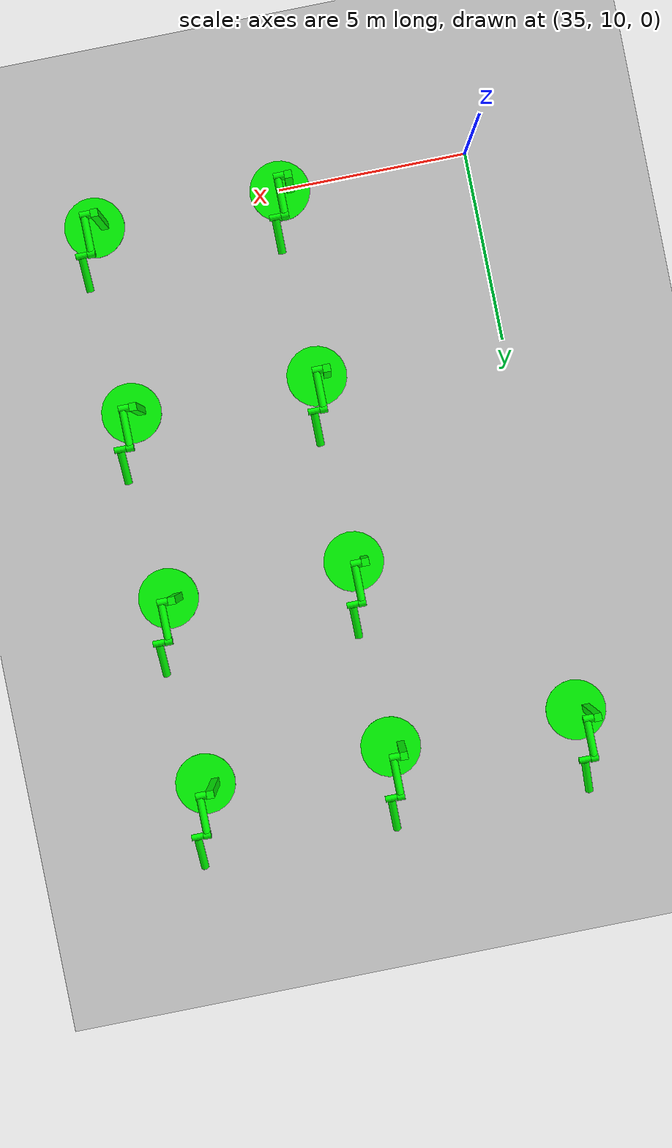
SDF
<sdf version="1.6">
 <world name="double_pendulums">
  <model name="ground_plane">
   <static>true</static>
   <link name="link">
    <collision name="collision">
     <geometry><plane><normal>0 0 1</normal><size>100 100</size></plane></geometry>
    </collision>
    <visual name="visual">
     <geometry><plane><normal>0 0 1</normal><size>100 100</size></plane></geometry>
     <material>
      <ambient>0.8 0.8 0.8 1</ambient>
      <diffuse>0.8 0.8 0.8 1</diffuse>
      <specular>0.8 0.8 0.8 1</specular>
     </material>
    </visual>
   </link>
  </model>
  <model name="dbl_pendulum_68">
   <pose>40 10 0 0 0 0</pose>
   <link name="base">
    <inertial><mass>100</mass></inertial>
    <visual name="vis_plate_on_ground">
     <pose>0 0 0.01 0 0 0</pose>
     <geometry><cylinder><radius>0.8</radius><length>0.02</length></cylinder></geometry>
     <material><ambient>0 1 0 1</ambient><diffuse>0 1 0 1</diffuse><specular>0 1 0 1</specular></material>
    </visual>
    <visual name="vis_pole">
     <pose>-0.275 0 1.1 0 0 0</pose>
     <geometry><box><size>0.2 0.2 2.2</size></box></geometry>
     <material><ambient>0 1 0 1</ambient><diffuse>0 1 0 1</diffuse><specular>0 1 0 1</specular></material>
    </visual>
    <collision name="col_plate_on_ground">
     <pose>0 0 0.01 0 0 0</pose>
     <geometry><cylinder><radius>0.8</radius><length>0.02</length></cylinder></geometry>
    </collision>
    <collision name="col_pole">
     <pose>-0.275 0 1.1 0 0 0</pose>
     <geometry><box><size>0.2 0.2 2.2</size></box></geometry>
    </collision>
   </link>
   <link name="upper_link">
    <pose>0 0 2.1 -1.5708 0 0</pose>
    <inertial><pose>0 0 0.5 0 0 0</pose></inertial>
    <visual name="vis_upper_joint">
     <pose>-0.05 0 0 0 1.5708 0</pose>
     <geometry><cylinder><radius>0.1</radius><length>0.3</length></cylinder></geometry>
     <material><ambient>0 1 0 1</ambient><diffuse>0 1 0 1</diffuse><specular>0 1 0 1</specular></material>
    </visual>
    <visual name="vis_lower_joint">
     <pose>0 0 1.0 0 1.5708 0</pose>
     <geometry><cylinder><radius>0.1</radius><length>0.2</length></cylinder></geometry>
     <material><ambient>0 1 0 1</ambient><diffuse>0 1 0 1</diffuse><specular>0 1 0 1</specular></material>
    </visual>
    <visual name="vis_cylinder">
     <pose>0 0 0.5 0 0 0</pose>
     <geometry><cylinder><radius>0.1</radius><length>0.9</length></cylinder></geometry>
     <material><ambient>0 1 0 1</ambient><diffuse>0 1 0 1</diffuse><specular>0 1 0 1</specular></material>
    </visual>
    <collision name="col_upper_joint">
     <pose>-0.05 0 0 0 1.5708 0</pose>
     <geometry><cylinder><radius>0.1</radius><length>0.3</length></cylinder></geometry>
    </collision>
    <collision name="col_lower_joint">
     <pose>0 0 1.0 0 1.5708 0</pose>
     <geometry><cylinder><radius>0.1</radius><length>0.2</length></cylinder></geometry>
    </collision>
    <collision name="col_cylinder">
     <pose>0 0 0.5 0 0 0</pose>
     <geometry><cylinder><radius>0.1</radius><length>0.9</length></cylinder></geometry>
    </collision>
   </link>
   <link name="lower_link">
    <pose>0.25 1.0 2.1 -2 0 0</pose>
    <inertial><pose>0 0 0.5 0 0 0</pose></inertial>
    <visual name="vis_lower_joint">
     <pose>0 0 0 0 1.5708 0</pose>
     <geometry><cylinder><radius>0.08</radius><length>0.3</length></cylinder></geometry>
     <material><ambient>0 1 0 1</ambient><diffuse>0 1 0 1</diffuse><specular>0 1 0 1</specular></material>
    </visual>
    <visual name="vis_cylinder">
     <pose>0 0 0.5 0 0 0</pose>
     <geometry><cylinder><radius>0.1</radius><length>0.9</length></cylinder></geometry>
     <material><ambient>0 1 0 1</ambient><diffuse>0 1 0 1</diffuse><specular>0 1 0 1</specular></material>
    </visual>
    <collision name="col_lower_joint">
     <pose>0 0 0 0 1.5708 0</pose>
     <geometry><cylinder><radius>0.08</radius><length>0.3</length></cylinder></geometry>
    </collision>
    <collision name="col_cylinder">
     <pose>0 0 0.5 0 0 0</pose>
     <geometry><cylinder><radius>0.1</radius><length>0.9</length></cylinder></geometry>
    </collision>
   </link>
   <joint name="upper_joint" type="revolute">
    <parent>base</parent>
    <child>upper_link</child>
    <axis><xyz>1.0 0 0</xyz></axis>
   </joint>
   <joint name="lower_joint" type="revolute">
    <parent>upper_link</parent>
    <child>lower_link</child>
    <axis><xyz>1.0 0 0</xyz></axis>
   </joint>
  </model>
  <model name="dbl_pendulum_69">
   <pose>45 10 0 0 0 0</pose>
   <link name="base">
    <inertial><mass>100</mass></inertial>
    <visual name="vis_plate_on_ground">
     <pose>0 0 0.01 0 0 0</pose>
     <geometry><cylinder><radius>0.8</radius><length>0.02</length></cylinder></geometry>
     <material><ambient>0 1 0 1</ambient><diffuse>0 1 0 1</diffuse><specular>0 1 0 1</specular></material>
    </visual>
    <visual name="vis_pole">
     <pose>-0.275 0 1.1 0 0 0</pose>
     <geometry><box><size>0.2 0.2 2.2</size></box></geometry>
     <material><ambient>0 1 0 1</ambient><diffuse>0 1 0 1</diffuse><specular>0 1 0 1</specular></material>
    </visual>
    <collision name="col_plate_on_ground">
     <pose>0 0 0.01 0 0 0</pose>
     <geometry><cylinder><radius>0.8</radius><length>0.02</length></cylinder></geometry>
    </collision>
    <collision name="col_pole">
     <pose>-0.275 0 1.1 0 0 0</pose>
     <geometry><box><size>0.2 0.2 2.2</size></box></geometry>
    </collision>
   </link>
   <link name="upper_link">
    <pose>0 0 2.1 -1.5708 0 0</pose>
    <inertial><pose>0 0 0.5 0 0 0</pose></inertial>
    <visual name="vis_upper_joint">
     <pose>-0.05 0 0 0 1.5708 0</pose>
     <geometry><cylinder><radius>0.1</radius><length>0.3</length></cylinder></geometry>
     <material><ambient>0 1 0 1</ambient><diffuse>0 1 0 1</diffuse><specular>0 1 0 1</specular></material>
    </visual>
    <visual name="vis_lower_joint">
     <pose>0 0 1.0 0 1.5708 0</pose>
     <geometry><cylinder><radius>0.1</radius><length>0.2</length></cylinder></geometry>
     <material><ambient>0 1 0 1</ambient><diffuse>0 1 0 1</diffuse><specular>0 1 0 1</specular></material>
    </visual>
    <visual name="vis_cylinder">
     <pose>0 0 0.5 0 0 0</pose>
     <geometry><cylinder><radius>0.1</radius><length>0.9</length></cylinder></geometry>
     <material><ambient>0 1 0 1</ambient><diffuse>0 1 0 1</diffuse><specular>0 1 0 1</specular></material>
    </visual>
    <collision name="col_upper_joint">
     <pose>-0.05 0 0 0 1.5708 0</pose>
     <geometry><cylinder><radius>0.1</radius><length>0.3</length></cylinder></geometry>
    </collision>
    <collision name="col_lower_joint">
     <pose>0 0 1.0 0 1.5708 0</pose>
     <geometry><cylinder><radius>0.1</radius><length>0.2</length></cylinder></geometry>
    </collision>
    <collision name="col_cylinder">
     <pose>0 0 0.5 0 0 0</pose>
     <geometry><cylinder><radius>0.1</radius><length>0.9</length></cylinder></geometry>
    </collision>
   </link>
   <link name="lower_link">
    <pose>0.25 1.0 2.1 -2 0 0</pose>
    <inertial><pose>0 0 0.5 0 0 0</pose></inertial>
    <visual name="vis_lower_joint">
     <pose>0 0 0 0 1.5708 0</pose>
     <geometry><cylinder><radius>0.08</radius><length>0.3</length></cylinder></geometry>
     <material><ambient>0 1 0 1</ambient><diffuse>0 1 0 1</diffuse><specular>0 1 0 1</specular></material>
    </visual>
    <visual name="vis_cylinder">
     <pose>0 0 0.5 0 0 0</pose>
     <geometry><cylinder><radius>0.1</radius><length>0.9</length></cylinder></geometry>
     <material><ambient>0 1 0 1</ambient><diffuse>0 1 0 1</diffuse><specular>0 1 0 1</specular></material>
    </visual>
    <collision name="col_lower_joint">
     <pose>0 0 0 0 1.5708 0</pose>
     <geometry><cylinder><radius>0.08</radius><length>0.3</length></cylinder></geometry>
    </collision>
    <collision name="col_cylinder">
     <pose>0 0 0.5 0 0 0</pose>
     <geometry><cylinder><radius>0.1</radius><length>0.9</length></cylinder></geometry>
    </collision>
   </link>
   <joint name="upper_joint" type="revolute">
    <parent>base</parent>
    <child>upper_link</child>
    <axis><xyz>1.0 0 0</xyz></axis>
   </joint>
   <joint name="lower_joint" type="revolute">
    <parent>upper_link</parent>
    <child>lower_link</child>
    <axis><xyz>1.0 0 0</xyz></axis>
   </joint>
  </model>
  <model name="dbl_pendulum_93">
   <pose>40 15 0 0 0 0</pose>
   <link name="base">
    <inertial><mass>100</mass></inertial>
    <visual name="vis_plate_on_ground">
     <pose>0 0 0.01 0 0 0</pose>
     <geometry><cylinder><radius>0.8</radius><length>0.02</length></cylinder></geometry>
     <material><ambient>0 1 0 1</ambient><diffuse>0 1 0 1</diffuse><specular>0 1 0 1</specular></material>
    </visual>
    <visual name="vis_pole">
     <pose>-0.275 0 1.1 0 0 0</pose>
     <geometry><box><size>0.2 0.2 2.2</size></box></geometry>
     <material><ambient>0 1 0 1</ambient><diffuse>0 1 0 1</diffuse><specular>0 1 0 1</specular></material>
    </visual>
    <collision name="col_plate_on_ground">
     <pose>0 0 0.01 0 0 0</pose>
     <geometry><cylinder><radius>0.8</radius><length>0.02</length></cylinder></geometry>
    </collision>
    <collision name="col_pole">
     <pose>-0.275 0 1.1 0 0 0</pose>
     <geometry><box><size>0.2 0.2 2.2</size></box></geometry>
    </collision>
   </link>
   <link name="upper_link">
    <pose>0 0 2.1 -1.5708 0 0</pose>
    <inertial><pose>0 0 0.5 0 0 0</pose></inertial>
    <visual name="vis_upper_joint">
     <pose>-0.05 0 0 0 1.5708 0</pose>
     <geometry><cylinder><radius>0.1</radius><length>0.3</length></cylinder></geometry>
     <material><ambient>0 1 0 1</ambient><diffuse>0 1 0 1</diffuse><specular>0 1 0 1</specular></material>
    </visual>
    <visual name="vis_lower_joint">
     <pose>0 0 1.0 0 1.5708 0</pose>
     <geometry><cylinder><radius>0.1</radius><length>0.2</length></cylinder></geometry>
     <material><ambient>0 1 0 1</ambient><diffuse>0 1 0 1</diffuse><specular>0 1 0 1</specular></material>
    </visual>
    <visual name="vis_cylinder">
     <pose>0 0 0.5 0 0 0</pose>
     <geometry><cylinder><radius>0.1</radius><length>0.9</length></cylinder></geometry>
     <material><ambient>0 1 0 1</ambient><diffuse>0 1 0 1</diffuse><specular>0 1 0 1</specular></material>
    </visual>
    <collision name="col_upper_joint">
     <pose>-0.05 0 0 0 1.5708 0</pose>
     <geometry><cylinder><radius>0.1</radius><length>0.3</length></cylinder></geometry>
    </collision>
    <collision name="col_lower_joint">
     <pose>0 0 1.0 0 1.5708 0</pose>
     <geometry><cylinder><radius>0.1</radius><length>0.2</length></cylinder></geometry>
    </collision>
    <collision name="col_cylinder">
     <pose>0 0 0.5 0 0 0</pose>
     <geometry><cylinder><radius>0.1</radius><length>0.9</length></cylinder></geometry>
    </collision>
   </link>
   <link name="lower_link">
    <pose>0.25 1.0 2.1 -2 0 0</pose>
    <inertial><pose>0 0 0.5 0 0 0</pose></inertial>
    <visual name="vis_lower_joint">
     <pose>0 0 0 0 1.5708 0</pose>
     <geometry><cylinder><radius>0.08</radius><length>0.3</length></cylinder></geometry>
     <material><ambient>0 1 0 1</ambient><diffuse>0 1 0 1</diffuse><specular>0 1 0 1</specular></material>
    </visual>
    <visual name="vis_cylinder">
     <pose>0 0 0.5 0 0 0</pose>
     <geometry><cylinder><radius>0.1</radius><length>0.9</length></cylinder></geometry>
     <material><ambient>0 1 0 1</ambient><diffuse>0 1 0 1</diffuse><specular>0 1 0 1</specular></material>
    </visual>
    <collision name="col_lower_joint">
     <pose>0 0 0 0 1.5708 0</pose>
     <geometry><cylinder><radius>0.08</radius><length>0.3</length></cylinder></geometry>
    </collision>
    <collision name="col_cylinder">
     <pose>0 0 0.5 0 0 0</pose>
     <geometry><cylinder><radius>0.1</radius><length>0.9</length></cylinder></geometry>
    </collision>
   </link>
   <joint name="upper_joint" type="revolute">
    <parent>base</parent>
    <child>upper_link</child>
    <axis><xyz>1.0 0 0</xyz></axis>
   </joint>
   <joint name="lower_joint" type="revolute">
    <parent>upper_link</parent>
    <child>lower_link</child>
    <axis><xyz>1.0 0 0</xyz></axis>
   </joint>
  </model>
  <model name="dbl_pendulum_94">
   <pose>45 15 0 0 0 0</pose>
   <link name="base">
    <inertial><mass>100</mass></inertial>
    <visual name="vis_plate_on_ground">
     <pose>0 0 0.01 0 0 0</pose>
     <geometry><cylinder><radius>0.8</radius><length>0.02</length></cylinder></geometry>
     <material><ambient>0 1 0 1</ambient><diffuse>0 1 0 1</diffuse><specular>0 1 0 1</specular></material>
    </visual>
    <visual name="vis_pole">
     <pose>-0.275 0 1.1 0 0 0</pose>
     <geometry><box><size>0.2 0.2 2.2</size></box></geometry>
     <material><ambient>0 1 0 1</ambient><diffuse>0 1 0 1</diffuse><specular>0 1 0 1</specular></material>
    </visual>
    <collision name="col_plate_on_ground">
     <pose>0 0 0.01 0 0 0</pose>
     <geometry><cylinder><radius>0.8</radius><length>0.02</length></cylinder></geometry>
    </collision>
    <collision name="col_pole">
     <pose>-0.275 0 1.1 0 0 0</pose>
     <geometry><box><size>0.2 0.2 2.2</size></box></geometry>
    </collision>
   </link>
   <link name="upper_link">
    <pose>0 0 2.1 -1.5708 0 0</pose>
    <inertial><pose>0 0 0.5 0 0 0</pose></inertial>
    <visual name="vis_upper_joint">
     <pose>-0.05 0 0 0 1.5708 0</pose>
     <geometry><cylinder><radius>0.1</radius><length>0.3</length></cylinder></geometry>
     <material><ambient>0 1 0 1</ambient><diffuse>0 1 0 1</diffuse><specular>0 1 0 1</specular></material>
    </visual>
    <visual name="vis_lower_joint">
     <pose>0 0 1.0 0 1.5708 0</pose>
     <geometry><cylinder><radius>0.1</radius><length>0.2</length></cylinder></geometry>
     <material><ambient>0 1 0 1</ambient><diffuse>0 1 0 1</diffuse><specular>0 1 0 1</specular></material>
    </visual>
    <visual name="vis_cylinder">
     <pose>0 0 0.5 0 0 0</pose>
     <geometry><cylinder><radius>0.1</radius><length>0.9</length></cylinder></geometry>
     <material><ambient>0 1 0 1</ambient><diffuse>0 1 0 1</diffuse><specular>0 1 0 1</specular></material>
    </visual>
    <collision name="col_upper_joint">
     <pose>-0.05 0 0 0 1.5708 0</pose>
     <geometry><cylinder><radius>0.1</radius><length>0.3</length></cylinder></geometry>
    </collision>
    <collision name="col_lower_joint">
     <pose>0 0 1.0 0 1.5708 0</pose>
     <geometry><cylinder><radius>0.1</radius><length>0.2</length></cylinder></geometry>
    </collision>
    <collision name="col_cylinder">
     <pose>0 0 0.5 0 0 0</pose>
     <geometry><cylinder><radius>0.1</radius><length>0.9</length></cylinder></geometry>
    </collision>
   </link>
   <link name="lower_link">
    <pose>0.25 1.0 2.1 -2 0 0</pose>
    <inertial><pose>0 0 0.5 0 0 0</pose></inertial>
    <visual name="vis_lower_joint">
     <pose>0 0 0 0 1.5708 0</pose>
     <geometry><cylinder><radius>0.08</radius><length>0.3</length></cylinder></geometry>
     <material><ambient>0 1 0 1</ambient><diffuse>0 1 0 1</diffuse><specular>0 1 0 1</specular></material>
    </visual>
    <visual name="vis_cylinder">
     <pose>0 0 0.5 0 0 0</pose>
     <geometry><cylinder><radius>0.1</radius><length>0.9</length></cylinder></geometry>
     <material><ambient>0 1 0 1</ambient><diffuse>0 1 0 1</diffuse><specular>0 1 0 1</specular></material>
    </visual>
    <collision name="col_lower_joint">
     <pose>0 0 0 0 1.5708 0</pose>
     <geometry><cylinder><radius>0.08</radius><length>0.3</length></cylinder></geometry>
    </collision>
    <collision name="col_cylinder">
     <pose>0 0 0.5 0 0 0</pose>
     <geometry><cylinder><radius>0.1</radius><length>0.9</length></cylinder></geometry>
    </collision>
   </link>
   <joint name="upper_joint" type="revolute">
    <parent>base</parent>
    <child>upper_link</child>
    <axis><xyz>1.0 0 0</xyz></axis>
   </joint>
   <joint name="lower_joint" type="revolute">
    <parent>upper_link</parent>
    <child>lower_link</child>
    <axis><xyz>1.0 0 0</xyz></axis>
   </joint>
  </model>
  <model name="dbl_pendulum_118">
   <pose>40 20 0 0 0 0</pose>
   <link name="base">
    <inertial><mass>100</mass></inertial>
    <visual name="vis_plate_on_ground">
     <pose>0 0 0.01 0 0 0</pose>
     <geometry><cylinder><radius>0.8</radius><length>0.02</length></cylinder></geometry>
     <material><ambient>0 1 0 1</ambient><diffuse>0 1 0 1</diffuse><specular>0 1 0 1</specular></material>
    </visual>
    <visual name="vis_pole">
     <pose>-0.275 0 1.1 0 0 0</pose>
     <geometry><box><size>0.2 0.2 2.2</size></box></geometry>
     <material><ambient>0 1 0 1</ambient><diffuse>0 1 0 1</diffuse><specular>0 1 0 1</specular></material>
    </visual>
    <collision name="col_plate_on_ground">
     <pose>0 0 0.01 0 0 0</pose>
     <geometry><cylinder><radius>0.8</radius><length>0.02</length></cylinder></geometry>
    </collision>
    <collision name="col_pole">
     <pose>-0.275 0 1.1 0 0 0</pose>
     <geometry><box><size>0.2 0.2 2.2</size></box></geometry>
    </collision>
   </link>
   <link name="upper_link">
    <pose>0 0 2.1 -1.5708 0 0</pose>
    <inertial><pose>0 0 0.5 0 0 0</pose></inertial>
    <visual name="vis_upper_joint">
     <pose>-0.05 0 0 0 1.5708 0</pose>
     <geometry><cylinder><radius>0.1</radius><length>0.3</length></cylinder></geometry>
     <material><ambient>0 1 0 1</ambient><diffuse>0 1 0 1</diffuse><specular>0 1 0 1</specular></material>
    </visual>
    <visual name="vis_lower_joint">
     <pose>0 0 1.0 0 1.5708 0</pose>
     <geometry><cylinder><radius>0.1</radius><length>0.2</length></cylinder></geometry>
     <material><ambient>0 1 0 1</ambient><diffuse>0 1 0 1</diffuse><specular>0 1 0 1</specular></material>
    </visual>
    <visual name="vis_cylinder">
     <pose>0 0 0.5 0 0 0</pose>
     <geometry><cylinder><radius>0.1</radius><length>0.9</length></cylinder></geometry>
     <material><ambient>0 1 0 1</ambient><diffuse>0 1 0 1</diffuse><specular>0 1 0 1</specular></material>
    </visual>
    <collision name="col_upper_joint">
     <pose>-0.05 0 0 0 1.5708 0</pose>
     <geometry><cylinder><radius>0.1</radius><length>0.3</length></cylinder></geometry>
    </collision>
    <collision name="col_lower_joint">
     <pose>0 0 1.0 0 1.5708 0</pose>
     <geometry><cylinder><radius>0.1</radius><length>0.2</length></cylinder></geometry>
    </collision>
    <collision name="col_cylinder">
     <pose>0 0 0.5 0 0 0</pose>
     <geometry><cylinder><radius>0.1</radius><length>0.9</length></cylinder></geometry>
    </collision>
   </link>
   <link name="lower_link">
    <pose>0.25 1.0 2.1 -2 0 0</pose>
    <inertial><pose>0 0 0.5 0 0 0</pose></inertial>
    <visual name="vis_lower_joint">
     <pose>0 0 0 0 1.5708 0</pose>
     <geometry><cylinder><radius>0.08</radius><length>0.3</length></cylinder></geometry>
     <material><ambient>0 1 0 1</ambient><diffuse>0 1 0 1</diffuse><specular>0 1 0 1</specular></material>
    </visual>
    <visual name="vis_cylinder">
     <pose>0 0 0.5 0 0 0</pose>
     <geometry><cylinder><radius>0.1</radius><length>0.9</length></cylinder></geometry>
     <material><ambient>0 1 0 1</ambient><diffuse>0 1 0 1</diffuse><specular>0 1 0 1</specular></material>
    </visual>
    <collision name="col_lower_joint">
     <pose>0 0 0 0 1.5708 0</pose>
     <geometry><cylinder><radius>0.08</radius><length>0.3</length></cylinder></geometry>
    </collision>
    <collision name="col_cylinder">
     <pose>0 0 0.5 0 0 0</pose>
     <geometry><cylinder><radius>0.1</radius><length>0.9</length></cylinder></geometry>
    </collision>
   </link>
   <joint name="upper_joint" type="revolute">
    <parent>base</parent>
    <child>upper_link</child>
    <axis><xyz>1.0 0 0</xyz></axis>
   </joint>
   <joint name="lower_joint" type="revolute">
    <parent>upper_link</parent>
    <child>lower_link</child>
    <axis><xyz>1.0 0 0</xyz></axis>
   </joint>
  </model>
  <model name="dbl_pendulum_119">
   <pose>45 20 0 0 0 0</pose>
   <link name="base">
    <inertial><mass>100</mass></inertial>
    <visual name="vis_plate_on_ground">
     <pose>0 0 0.01 0 0 0</pose>
     <geometry><cylinder><radius>0.8</radius><length>0.02</length></cylinder></geometry>
     <material><ambient>0 1 0 1</ambient><diffuse>0 1 0 1</diffuse><specular>0 1 0 1</specular></material>
    </visual>
    <visual name="vis_pole">
     <pose>-0.275 0 1.1 0 0 0</pose>
     <geometry><box><size>0.2 0.2 2.2</size></box></geometry>
     <material><ambient>0 1 0 1</ambient><diffuse>0 1 0 1</diffuse><specular>0 1 0 1</specular></material>
    </visual>
    <collision name="col_plate_on_ground">
     <pose>0 0 0.01 0 0 0</pose>
     <geometry><cylinder><radius>0.8</radius><length>0.02</length></cylinder></geometry>
    </collision>
    <collision name="col_pole">
     <pose>-0.275 0 1.1 0 0 0</pose>
     <geometry><box><size>0.2 0.2 2.2</size></box></geometry>
    </collision>
   </link>
   <link name="upper_link">
    <pose>0 0 2.1 -1.5708 0 0</pose>
    <inertial><pose>0 0 0.5 0 0 0</pose></inertial>
    <visual name="vis_upper_joint">
     <pose>-0.05 0 0 0 1.5708 0</pose>
     <geometry><cylinder><radius>0.1</radius><length>0.3</length></cylinder></geometry>
     <material><ambient>0 1 0 1</ambient><diffuse>0 1 0 1</diffuse><specular>0 1 0 1</specular></material>
    </visual>
    <visual name="vis_lower_joint">
     <pose>0 0 1.0 0 1.5708 0</pose>
     <geometry><cylinder><radius>0.1</radius><length>0.2</length></cylinder></geometry>
     <material><ambient>0 1 0 1</ambient><diffuse>0 1 0 1</diffuse><specular>0 1 0 1</specular></material>
    </visual>
    <visual name="vis_cylinder">
     <pose>0 0 0.5 0 0 0</pose>
     <geometry><cylinder><radius>0.1</radius><length>0.9</length></cylinder></geometry>
     <material><ambient>0 1 0 1</ambient><diffuse>0 1 0 1</diffuse><specular>0 1 0 1</specular></material>
    </visual>
    <collision name="col_upper_joint">
     <pose>-0.05 0 0 0 1.5708 0</pose>
     <geometry><cylinder><radius>0.1</radius><length>0.3</length></cylinder></geometry>
    </collision>
    <collision name="col_lower_joint">
     <pose>0 0 1.0 0 1.5708 0</pose>
     <geometry><cylinder><radius>0.1</radius><length>0.2</length></cylinder></geometry>
    </collision>
    <collision name="col_cylinder">
     <pose>0 0 0.5 0 0 0</pose>
     <geometry><cylinder><radius>0.1</radius><length>0.9</length></cylinder></geometry>
    </collision>
   </link>
   <link name="lower_link">
    <pose>0.25 1.0 2.1 -2 0 0</pose>
    <inertial><pose>0 0 0.5 0 0 0</pose></inertial>
    <visual name="vis_lower_joint">
     <pose>0 0 0 0 1.5708 0</pose>
     <geometry><cylinder><radius>0.08</radius><length>0.3</length></cylinder></geometry>
     <material><ambient>0 1 0 1</ambient><diffuse>0 1 0 1</diffuse><specular>0 1 0 1</specular></material>
    </visual>
    <visual name="vis_cylinder">
     <pose>0 0 0.5 0 0 0</pose>
     <geometry><cylinder><radius>0.1</radius><length>0.9</length></cylinder></geometry>
     <material><ambient>0 1 0 1</ambient><diffuse>0 1 0 1</diffuse><specular>0 1 0 1</specular></material>
    </visual>
    <collision name="col_lower_joint">
     <pose>0 0 0 0 1.5708 0</pose>
     <geometry><cylinder><radius>0.08</radius><length>0.3</length></cylinder></geometry>
    </collision>
    <collision name="col_cylinder">
     <pose>0 0 0.5 0 0 0</pose>
     <geometry><cylinder><radius>0.1</radius><length>0.9</length></cylinder></geometry>
    </collision>
   </link>
   <joint name="upper_joint" type="revolute">
    <parent>base</parent>
    <child>upper_link</child>
    <axis><xyz>1.0 0 0</xyz></axis>
   </joint>
   <joint name="lower_joint" type="revolute">
    <parent>upper_link</parent>
    <child>lower_link</child>
    <axis><xyz>1.0 0 0</xyz></axis>
   </joint>
  </model>
  <model name="dbl_pendulum_142">
   <pose>35 25 0 0 0 0</pose>
   <link name="base">
    <inertial><mass>100</mass></inertial>
    <visual name="vis_plate_on_ground">
     <pose>0 0 0.01 0 0 0</pose>
     <geometry><cylinder><radius>0.8</radius><length>0.02</length></cylinder></geometry>
     <material><ambient>0 1 0 1</ambient><diffuse>0 1 0 1</diffuse><specular>0 1 0 1</specular></material>
    </visual>
    <visual name="vis_pole">
     <pose>-0.275 0 1.1 0 0 0</pose>
     <geometry><box><size>0.2 0.2 2.2</size></box></geometry>
     <material><ambient>0 1 0 1</ambient><diffuse>0 1 0 1</diffuse><specular>0 1 0 1</specular></material>
    </visual>
    <collision name="col_plate_on_ground">
     <pose>0 0 0.01 0 0 0</pose>
     <geometry><cylinder><radius>0.8</radius><length>0.02</length></cylinder></geometry>
    </collision>
    <collision name="col_pole">
     <pose>-0.275 0 1.1 0 0 0</pose>
     <geometry><box><size>0.2 0.2 2.2</size></box></geometry>
    </collision>
   </link>
   <link name="upper_link">
    <pose>0 0 2.1 -1.5708 0 0</pose>
    <inertial><pose>0 0 0.5 0 0 0</pose></inertial>
    <visual name="vis_upper_joint">
     <pose>-0.05 0 0 0 1.5708 0</pose>
     <geometry><cylinder><radius>0.1</radius><length>0.3</length></cylinder></geometry>
     <material><ambient>0 1 0 1</ambient><diffuse>0 1 0 1</diffuse><specular>0 1 0 1</specular></material>
    </visual>
    <visual name="vis_lower_joint">
     <pose>0 0 1.0 0 1.5708 0</pose>
     <geometry><cylinder><radius>0.1</radius><length>0.2</length></cylinder></geometry>
     <material><ambient>0 1 0 1</ambient><diffuse>0 1 0 1</diffuse><specular>0 1 0 1</specular></material>
    </visual>
    <visual name="vis_cylinder">
     <pose>0 0 0.5 0 0 0</pose>
     <geometry><cylinder><radius>0.1</radius><length>0.9</length></cylinder></geometry>
     <material><ambient>0 1 0 1</ambient><diffuse>0 1 0 1</diffuse><specular>0 1 0 1</specular></material>
    </visual>
    <collision name="col_upper_joint">
     <pose>-0.05 0 0 0 1.5708 0</pose>
     <geometry><cylinder><radius>0.1</radius><length>0.3</length></cylinder></geometry>
    </collision>
    <collision name="col_lower_joint">
     <pose>0 0 1.0 0 1.5708 0</pose>
     <geometry><cylinder><radius>0.1</radius><length>0.2</length></cylinder></geometry>
    </collision>
    <collision name="col_cylinder">
     <pose>0 0 0.5 0 0 0</pose>
     <geometry><cylinder><radius>0.1</radius><length>0.9</length></cylinder></geometry>
    </collision>
   </link>
   <link name="lower_link">
    <pose>0.25 1.0 2.1 -2 0 0</pose>
    <inertial><pose>0 0 0.5 0 0 0</pose></inertial>
    <visual name="vis_lower_joint">
     <pose>0 0 0 0 1.5708 0</pose>
     <geometry><cylinder><radius>0.08</radius><length>0.3</length></cylinder></geometry>
     <material><ambient>0 1 0 1</ambient><diffuse>0 1 0 1</diffuse><specular>0 1 0 1</specular></material>
    </visual>
    <visual name="vis_cylinder">
     <pose>0 0 0.5 0 0 0</pose>
     <geometry><cylinder><radius>0.1</radius><length>0.9</length></cylinder></geometry>
     <material><ambient>0 1 0 1</ambient><diffuse>0 1 0 1</diffuse><specular>0 1 0 1</specular></material>
    </visual>
    <collision name="col_lower_joint">
     <pose>0 0 0 0 1.5708 0</pose>
     <geometry><cylinder><radius>0.08</radius><length>0.3</length></cylinder></geometry>
    </collision>
    <collision name="col_cylinder">
     <pose>0 0 0.5 0 0 0</pose>
     <geometry><cylinder><radius>0.1</radius><length>0.9</length></cylinder></geometry>
    </collision>
   </link>
   <joint name="upper_joint" type="revolute">
    <parent>base</parent>
    <child>upper_link</child>
    <axis><xyz>1.0 0 0</xyz></axis>
   </joint>
   <joint name="lower_joint" type="revolute">
    <parent>upper_link</parent>
    <child>lower_link</child>
    <axis><xyz>1.0 0 0</xyz></axis>
   </joint>
  </model>
  <model name="dbl_pendulum_143">
   <pose>40 25 0 0 0 0</pose>
   <link name="base">
    <inertial><mass>100</mass></inertial>
    <visual name="vis_plate_on_ground">
     <pose>0 0 0.01 0 0 0</pose>
     <geometry><cylinder><radius>0.8</radius><length>0.02</length></cylinder></geometry>
     <material><ambient>0 1 0 1</ambient><diffuse>0 1 0 1</diffuse><specular>0 1 0 1</specular></material>
    </visual>
    <visual name="vis_pole">
     <pose>-0.275 0 1.1 0 0 0</pose>
     <geometry><box><size>0.2 0.2 2.2</size></box></geometry>
     <material><ambient>0 1 0 1</ambient><diffuse>0 1 0 1</diffuse><specular>0 1 0 1</specular></material>
    </visual>
    <collision name="col_plate_on_ground">
     <pose>0 0 0.01 0 0 0</pose>
     <geometry><cylinder><radius>0.8</radius><length>0.02</length></cylinder></geometry>
    </collision>
    <collision name="col_pole">
     <pose>-0.275 0 1.1 0 0 0</pose>
     <geometry><box><size>0.2 0.2 2.2</size></box></geometry>
    </collision>
   </link>
   <link name="upper_link">
    <pose>0 0 2.1 -1.5708 0 0</pose>
    <inertial><pose>0 0 0.5 0 0 0</pose></inertial>
    <visual name="vis_upper_joint">
     <pose>-0.05 0 0 0 1.5708 0</pose>
     <geometry><cylinder><radius>0.1</radius><length>0.3</length></cylinder></geometry>
     <material><ambient>0 1 0 1</ambient><diffuse>0 1 0 1</diffuse><specular>0 1 0 1</specular></material>
    </visual>
    <visual name="vis_lower_joint">
     <pose>0 0 1.0 0 1.5708 0</pose>
     <geometry><cylinder><radius>0.1</radius><length>0.2</length></cylinder></geometry>
     <material><ambient>0 1 0 1</ambient><diffuse>0 1 0 1</diffuse><specular>0 1 0 1</specular></material>
    </visual>
    <visual name="vis_cylinder">
     <pose>0 0 0.5 0 0 0</pose>
     <geometry><cylinder><radius>0.1</radius><length>0.9</length></cylinder></geometry>
     <material><ambient>0 1 0 1</ambient><diffuse>0 1 0 1</diffuse><specular>0 1 0 1</specular></material>
    </visual>
    <collision name="col_upper_joint">
     <pose>-0.05 0 0 0 1.5708 0</pose>
     <geometry><cylinder><radius>0.1</radius><length>0.3</length></cylinder></geometry>
    </collision>
    <collision name="col_lower_joint">
     <pose>0 0 1.0 0 1.5708 0</pose>
     <geometry><cylinder><radius>0.1</radius><length>0.2</length></cylinder></geometry>
    </collision>
    <collision name="col_cylinder">
     <pose>0 0 0.5 0 0 0</pose>
     <geometry><cylinder><radius>0.1</radius><length>0.9</length></cylinder></geometry>
    </collision>
   </link>
   <link name="lower_link">
    <pose>0.25 1.0 2.1 -2 0 0</pose>
    <inertial><pose>0 0 0.5 0 0 0</pose></inertial>
    <visual name="vis_lower_joint">
     <pose>0 0 0 0 1.5708 0</pose>
     <geometry><cylinder><radius>0.08</radius><length>0.3</length></cylinder></geometry>
     <material><ambient>0 1 0 1</ambient><diffuse>0 1 0 1</diffuse><specular>0 1 0 1</specular></material>
    </visual>
    <visual name="vis_cylinder">
     <pose>0 0 0.5 0 0 0</pose>
     <geometry><cylinder><radius>0.1</radius><length>0.9</length></cylinder></geometry>
     <material><ambient>0 1 0 1</ambient><diffuse>0 1 0 1</diffuse><specular>0 1 0 1</specular></material>
    </visual>
    <collision name="col_lower_joint">
     <pose>0 0 0 0 1.5708 0</pose>
     <geometry><cylinder><radius>0.08</radius><length>0.3</length></cylinder></geometry>
    </collision>
    <collision name="col_cylinder">
     <pose>0 0 0.5 0 0 0</pose>
     <geometry><cylinder><radius>0.1</radius><length>0.9</length></cylinder></geometry>
    </collision>
   </link>
   <joint name="upper_joint" type="revolute">
    <parent>base</parent>
    <child>upper_link</child>
    <axis><xyz>1.0 0 0</xyz></axis>
   </joint>
   <joint name="lower_joint" type="revolute">
    <parent>upper_link</parent>
    <child>lower_link</child>
    <axis><xyz>1.0 0 0</xyz></axis>
   </joint>
  </model>
  <model name="dbl_pendulum_144">
   <pose>45 25 0 0 0 0</pose>
   <link name="base">
    <inertial><mass>100</mass></inertial>
    <visual name="vis_plate_on_ground">
     <pose>0 0 0.01 0 0 0</pose>
     <geometry><cylinder><radius>0.8</radius><length>0.02</length></cylinder></geometry>
     <material><ambient>0 1 0 1</ambient><diffuse>0 1 0 1</diffuse><specular>0 1 0 1</specular></material>
    </visual>
    <visual name="vis_pole">
     <pose>-0.275 0 1.1 0 0 0</pose>
     <geometry><box><size>0.2 0.2 2.2</size></box></geometry>
     <material><ambient>0 1 0 1</ambient><diffuse>0 1 0 1</diffuse><specular>0 1 0 1</specular></material>
    </visual>
    <collision name="col_plate_on_ground">
     <pose>0 0 0.01 0 0 0</pose>
     <geometry><cylinder><radius>0.8</radius><length>0.02</length></cylinder></geometry>
    </collision>
    <collision name="col_pole">
     <pose>-0.275 0 1.1 0 0 0</pose>
     <geometry><box><size>0.2 0.2 2.2</size></box></geometry>
    </collision>
   </link>
   <link name="upper_link">
    <pose>0 0 2.1 -1.5708 0 0</pose>
    <inertial><pose>0 0 0.5 0 0 0</pose></inertial>
    <visual name="vis_upper_joint">
     <pose>-0.05 0 0 0 1.5708 0</pose>
     <geometry><cylinder><radius>0.1</radius><length>0.3</length></cylinder></geometry>
     <material><ambient>0 1 0 1</ambient><diffuse>0 1 0 1</diffuse><specular>0 1 0 1</specular></material>
    </visual>
    <visual name="vis_lower_joint">
     <pose>0 0 1.0 0 1.5708 0</pose>
     <geometry><cylinder><radius>0.1</radius><length>0.2</length></cylinder></geometry>
     <material><ambient>0 1 0 1</ambient><diffuse>0 1 0 1</diffuse><specular>0 1 0 1</specular></material>
    </visual>
    <visual name="vis_cylinder">
     <pose>0 0 0.5 0 0 0</pose>
     <geometry><cylinder><radius>0.1</radius><length>0.9</length></cylinder></geometry>
     <material><ambient>0 1 0 1</ambient><diffuse>0 1 0 1</diffuse><specular>0 1 0 1</specular></material>
    </visual>
    <collision name="col_upper_joint">
     <pose>-0.05 0 0 0 1.5708 0</pose>
     <geometry><cylinder><radius>0.1</radius><length>0.3</length></cylinder></geometry>
    </collision>
    <collision name="col_lower_joint">
     <pose>0 0 1.0 0 1.5708 0</pose>
     <geometry><cylinder><radius>0.1</radius><length>0.2</length></cylinder></geometry>
    </collision>
    <collision name="col_cylinder">
     <pose>0 0 0.5 0 0 0</pose>
     <geometry><cylinder><radius>0.1</radius><length>0.9</length></cylinder></geometry>
    </collision>
   </link>
   <link name="lower_link">
    <pose>0.25 1.0 2.1 -2 0 0</pose>
    <inertial><pose>0 0 0.5 0 0 0</pose></inertial>
    <visual name="vis_lower_joint">
     <pose>0 0 0 0 1.5708 0</pose>
     <geometry><cylinder><radius>0.08</radius><length>0.3</length></cylinder></geometry>
     <material><ambient>0 1 0 1</ambient><diffuse>0 1 0 1</diffuse><specular>0 1 0 1</specular></material>
    </visual>
    <visual name="vis_cylinder">
     <pose>0 0 0.5 0 0 0</pose>
     <geometry><cylinder><radius>0.1</radius><length>0.9</length></cylinder></geometry>
     <material><ambient>0 1 0 1</ambient><diffuse>0 1 0 1</diffuse><specular>0 1 0 1</specular></material>
    </visual>
    <collision name="col_lower_joint">
     <pose>0 0 0 0 1.5708 0</pose>
     <geometry><cylinder><radius>0.08</radius><length>0.3</length></cylinder></geometry>
    </collision>
    <collision name="col_cylinder">
     <pose>0 0 0.5 0 0 0</pose>
     <geometry><cylinder><radius>0.1</radius><length>0.9</length></cylinder></geometry>
    </collision>
   </link>
   <joint name="upper_joint" type="revolute">
    <parent>base</parent>
    <child>upper_link</child>
    <axis><xyz>1.0 0 0</xyz></axis>
   </joint>
   <joint name="lower_joint" type="revolute">
    <parent>upper_link</parent>
    <child>lower_link</child>
    <axis><xyz>1.0 0 0</xyz></axis>
   </joint>
  </model>
 </world>
</sdf>
